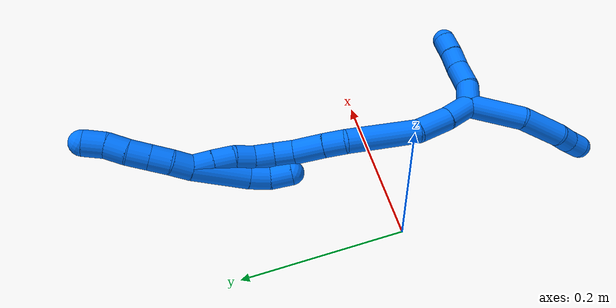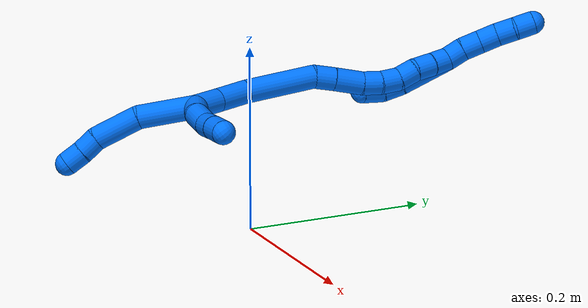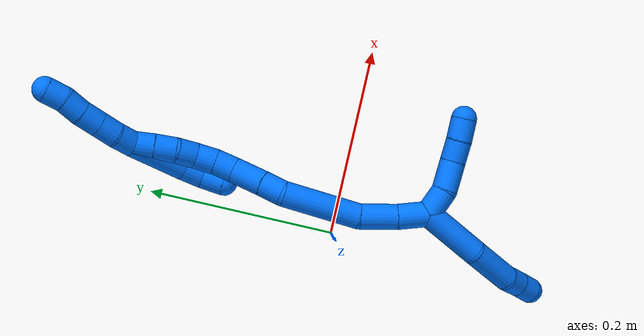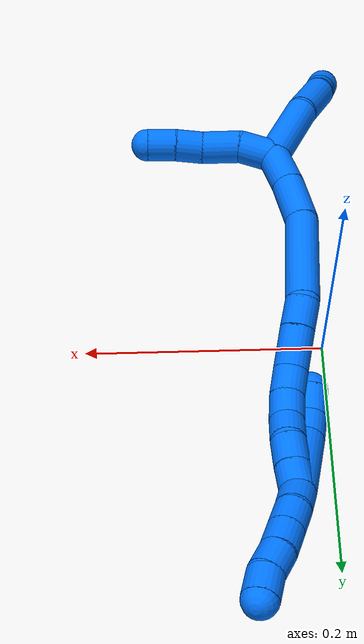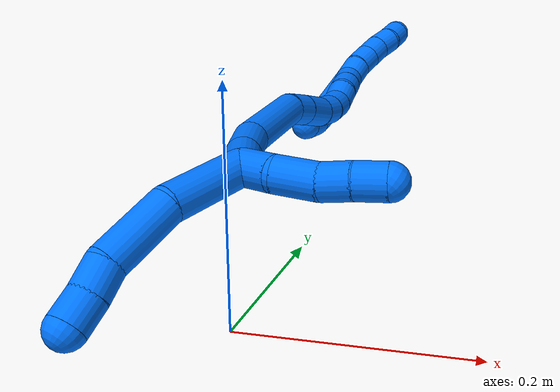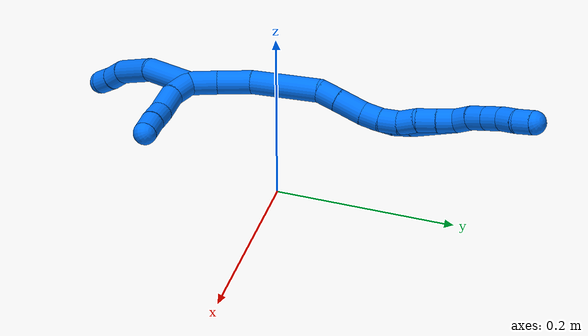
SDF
<sdf version="1.7">
 <world name="default">
  <model name="14">
   <static>0</static>
   <link name="14">
    <collision name="collision-cylinder-e_1_2_8">
     <pose>-0.004309 -0.012983 -0.027031 2.69381 -0.142704 -0.608289</pose>
     <geometry><cylinder><radius>0.0125</radius><length>0.06059</length></cylinder></geometry>
     <surface>
      <friction><ode><mu>1.16</mu><mu2>1.16</mu2><slip1>0</slip1><slip2>0</slip2></ode></friction>
      <contact><ode><kp>1e+06</kp><kd>1</kd><max_vel>0</max_vel><min_depth>0.001</min_depth></ode></contact>
     </surface>
    </collision>
    <visual name="visual-cylinder-e_1_2_8">
     <pose>-0.004309 -0.012983 -0.027031 2.69381 -0.142704 -0.608289</pose>
     <geometry><cylinder><radius>0.0125</radius><length>0.06059</length></cylinder></geometry>
     <material><ambient>0 0.462745 1 1</ambient></material>
    </visual>
    <collision name="collision-cylinder-e_2_8_9">
     <pose>-0.009983 -0.029883 -0.078261 2.98114 -0.055662 -0.666646</pose>
     <geometry><cylinder><radius>0.0125</radius><length>0.049104</length></cylinder></geometry>
     <surface>
      <friction><ode><mu>1.16</mu><mu2>1.16</mu2><slip1>0</slip1><slip2>0</slip2></ode></friction>
      <contact><ode><kp>1e+06</kp><kd>1</kd><max_vel>0</max_vel><min_depth>0.001</min_depth></ode></contact>
     </surface>
    </collision>
    <visual name="visual-cylinder-e_2_8_9">
     <pose>-0.009983 -0.029883 -0.078261 2.98114 -0.055662 -0.666646</pose>
     <geometry><cylinder><radius>0.0125</radius><length>0.049104</length></cylinder></geometry>
     <material><ambient>0 0.462745 1 1</ambient></material>
    </visual>
    <collision name="collision-cylinder-e_3_9_10">
     <pose>-0.009807 -0.033226 -0.112453 -3.08424 0.152868 -2.42486</pose>
     <geometry><cylinder><radius>0.0125</radius><length>0.020254</length></cylinder></geometry>
     <surface>
      <friction><ode><mu>1.16</mu><mu2>1.16</mu2><slip1>0</slip1><slip2>0</slip2></ode></friction>
      <contact><ode><kp>1e+06</kp><kd>1</kd><max_vel>0</max_vel><min_depth>0.001</min_depth></ode></contact>
     </surface>
    </collision>
    <visual name="visual-cylinder-e_3_9_10">
     <pose>-0.009807 -0.033226 -0.112453 -3.08424 0.152868 -2.42486</pose>
     <geometry><cylinder><radius>0.0125</radius><length>0.020254</length></cylinder></geometry>
     <material><ambient>0 0.462745 1 1</ambient></material>
    </visual>
    <collision name="collision-cylinder-e_4_10_6">
     <pose>-0.007233 -0.033077 -0.132408 3.099 0.103119 2.35875</pose>
     <geometry><cylinder><radius>0.0125</radius><length>0.020051</length></cylinder></geometry>
     <surface>
      <friction><ode><mu>1.16</mu><mu2>1.16</mu2><slip1>0</slip1><slip2>0</slip2></ode></friction>
      <contact><ode><kp>1e+06</kp><kd>1</kd><max_vel>0</max_vel><min_depth>0.001</min_depth></ode></contact>
     </surface>
    </collision>
    <visual name="visual-cylinder-e_4_10_6">
     <pose>-0.007233 -0.033077 -0.132408 3.099 0.103119 2.35875</pose>
     <geometry><cylinder><radius>0.0125</radius><length>0.020051</length></cylinder></geometry>
     <material><ambient>0 0.462745 1 1</ambient></material>
    </visual>
    <collision name="collision-cylinder-e_1_2_11">
     <pose>0.013252 -0.002647 0.000171 1.50613 1.37326 1.31026</pose>
     <geometry><cylinder><radius>0.0125</radius><length>0.027029</length></cylinder></geometry>
     <surface>
      <friction><ode><mu>1.16</mu><mu2>1.16</mu2><slip1>0</slip1><slip2>0</slip2></ode></friction>
      <contact><ode><kp>1e+06</kp><kd>1</kd><max_vel>0</max_vel><min_depth>0.001</min_depth></ode></contact>
     </surface>
    </collision>
    <visual name="visual-cylinder-e_1_2_11">
     <pose>0.013252 -0.002647 0.000171 1.50613 1.37326 1.31026</pose>
     <geometry><cylinder><radius>0.0125</radius><length>0.027029</length></cylinder></geometry>
     <material><ambient>0 0.462745 1 1</ambient></material>
    </visual>
    <collision name="collision-cylinder-e_2_11_12">
     <pose>0.041022 -0.004336 0.003568 -0.288373 1.34307 -0.229771</pose>
     <geometry><cylinder><radius>0.0125</radius><length>0.029807</length></cylinder></geometry>
     <surface>
      <friction><ode><mu>1.16</mu><mu2>1.16</mu2><slip1>0</slip1><slip2>0</slip2></ode></friction>
      <contact><ode><kp>1e+06</kp><kd>1</kd><max_vel>0</max_vel><min_depth>0.001</min_depth></ode></contact>
     </surface>
    </collision>
    <visual name="visual-cylinder-e_2_11_12">
     <pose>0.041022 -0.004336 0.003568 -0.288373 1.34307 -0.229771</pose>
     <geometry><cylinder><radius>0.0125</radius><length>0.029807</length></cylinder></geometry>
     <material><ambient>0 0.462745 1 1</ambient></material>
    </visual>
    <collision name="collision-cylinder-e_3_12_13">
     <pose>0.065523 -0.004302 0.010516 0.242817 1.20406 0.167278</pose>
     <geometry><cylinder><radius>0.0125</radius><length>0.021387</length></cylinder></geometry>
     <surface>
      <friction><ode><mu>1.16</mu><mu2>1.16</mu2><slip1>0</slip1><slip2>0</slip2></ode></friction>
      <contact><ode><kp>1e+06</kp><kd>1</kd><max_vel>0</max_vel><min_depth>0.001</min_depth></ode></contact>
     </surface>
    </collision>
    <visual name="visual-cylinder-e_3_12_13">
     <pose>0.065523 -0.004302 0.010516 0.242817 1.20406 0.167278</pose>
     <geometry><cylinder><radius>0.0125</radius><length>0.021387</length></cylinder></geometry>
     <material><ambient>0 0.462745 1 1</ambient></material>
    </visual>
    <collision name="collision-cylinder-e_4_13_5">
     <pose>0.0857 -0.005161 0.018064 -0.016442 1.21172 -0.011391</pose>
     <geometry><cylinder><radius>0.0125</radius><length>0.021777</length></cylinder></geometry>
     <surface>
      <friction><ode><mu>1.16</mu><mu2>1.16</mu2><slip1>0</slip1><slip2>0</slip2></ode></friction>
      <contact><ode><kp>1e+06</kp><kd>1</kd><max_vel>0</max_vel><min_depth>0.001</min_depth></ode></contact>
     </surface>
    </collision>
    <visual name="visual-cylinder-e_4_13_5">
     <pose>0.0857 -0.005161 0.018064 -0.016442 1.21172 -0.011391</pose>
     <geometry><cylinder><radius>0.0125</radius><length>0.021777</length></cylinder></geometry>
     <material><ambient>0 0.462745 1 1</ambient></material>
    </visual>
    <collision name="collision-cylinder-e_1_2_14">
     <pose>-0.008441 0.008624 0.009125 -0.757152 -0.591882 0.241373</pose>
     <geometry><cylinder><radius>0.0125</radius><length>0.030258</length></cylinder></geometry>
     <surface>
      <friction><ode><mu>1.16</mu><mu2>1.16</mu2><slip1>0</slip1><slip2>0</slip2></ode></friction>
      <contact><ode><kp>1e+06</kp><kd>1</kd><max_vel>0</max_vel><min_depth>0.001</min_depth></ode></contact>
     </surface>
    </collision>
    <visual name="visual-cylinder-e_1_2_14">
     <pose>-0.008441 0.008624 0.009125 -0.757152 -0.591882 0.241373</pose>
     <geometry><cylinder><radius>0.0125</radius><length>0.030258</length></cylinder></geometry>
     <material><ambient>0 0.462745 1 1</ambient></material>
    </visual>
    <collision name="collision-cylinder-e_2_14_15">
     <pose>-0.025675 0.027347 0.030972 -0.670998 -0.49617 0.176187</pose>
     <geometry><cylinder><radius>0.0125</radius><length>0.036941</length></cylinder></geometry>
     <surface>
      <friction><ode><mu>1.16</mu><mu2>1.16</mu2><slip1>0</slip1><slip2>0</slip2></ode></friction>
      <contact><ode><kp>1e+06</kp><kd>1</kd><max_vel>0</max_vel><min_depth>0.001</min_depth></ode></contact>
     </surface>
    </collision>
    <visual name="visual-cylinder-e_2_14_15">
     <pose>-0.025675 0.027347 0.030972 -0.670998 -0.49617 0.176187</pose>
     <geometry><cylinder><radius>0.0125</radius><length>0.036941</length></cylinder></geometry>
     <material><ambient>0 0.462745 1 1</ambient></material>
    </visual>
    <collision name="collision-cylinder-e_3_15_16">
     <pose>-0.043016 0.058363 0.074718 -0.59321 -0.224598 0.068904</pose>
     <geometry><cylinder><radius>0.0125</radius><length>0.076761</length></cylinder></geometry>
     <surface>
      <friction><ode><mu>1.16</mu><mu2>1.16</mu2><slip1>0</slip1><slip2>0</slip2></ode></friction>
      <contact><ode><kp>1e+06</kp><kd>1</kd><max_vel>0</max_vel><min_depth>0.001</min_depth></ode></contact>
     </surface>
    </collision>
    <visual name="visual-cylinder-e_3_15_16">
     <pose>-0.043016 0.058363 0.074718 -0.59321 -0.224598 0.068904</pose>
     <geometry><cylinder><radius>0.0125</radius><length>0.076761</length></cylinder></geometry>
     <material><ambient>0 0.462745 1 1</ambient></material>
    </visual>
    <collision name="collision-cylinder-e_4_16_17">
     <pose>-0.051731 0.087664 0.112998 -0.857358 -0.015072 0.006888</pose>
     <geometry><cylinder><radius>0.0125</radius><length>0.02218</length></cylinder></geometry>
     <surface>
      <friction><ode><mu>1.16</mu><mu2>1.16</mu2><slip1>0</slip1><slip2>0</slip2></ode></friction>
      <contact><ode><kp>1e+06</kp><kd>1</kd><max_vel>0</max_vel><min_depth>0.001</min_depth></ode></contact>
     </surface>
    </collision>
    <visual name="visual-cylinder-e_4_16_17">
     <pose>-0.051731 0.087664 0.112998 -0.857358 -0.015072 0.006888</pose>
     <geometry><cylinder><radius>0.0125</radius><length>0.02218</length></cylinder></geometry>
     <material><ambient>0 0.462745 1 1</ambient></material>
    </visual>
    <collision name="collision-cylinder-e_5_17_18">
     <pose>-0.052369 0.108166 0.130056 -0.890687 -0.030215 0.014423</pose>
     <geometry><cylinder><radius>0.0125</radius><length>0.031183</length></cylinder></geometry>
     <surface>
      <friction><ode><mu>1.16</mu><mu2>1.16</mu2><slip1>0</slip1><slip2>0</slip2></ode></friction>
      <contact><ode><kp>1e+06</kp><kd>1</kd><max_vel>0</max_vel><min_depth>0.001</min_depth></ode></contact>
     </surface>
    </collision>
    <visual name="visual-cylinder-e_5_17_18">
     <pose>-0.052369 0.108166 0.130056 -0.890687 -0.030215 0.014423</pose>
     <geometry><cylinder><radius>0.0125</radius><length>0.031183</length></cylinder></geometry>
     <material><ambient>0 0.462745 1 1</ambient></material>
    </visual>
    <collision name="collision-cylinder-e_6_18_19">
     <pose>-0.053599 0.127072 0.147374 -0.734558 -0.074824 0.028799</pose>
     <geometry><cylinder><radius>0.0125</radius><length>0.020316</length></cylinder></geometry>
     <surface>
      <friction><ode><mu>1.16</mu><mu2>1.16</mu2><slip1>0</slip1><slip2>0</slip2></ode></friction>
      <contact><ode><kp>1e+06</kp><kd>1</kd><max_vel>0</max_vel><min_depth>0.001</min_depth></ode></contact>
     </surface>
    </collision>
    <visual name="visual-cylinder-e_6_18_19">
     <pose>-0.053599 0.127072 0.147374 -0.734558 -0.074824 0.028799</pose>
     <geometry><cylinder><radius>0.0125</radius><length>0.020316</length></cylinder></geometry>
     <material><ambient>0 0.462745 1 1</ambient></material>
    </visual>
    <collision name="collision-cylinder-e_7_19_20">
     <pose>-0.056585 0.13964 0.163253 -0.604717 -0.215596 0.067485</pose>
     <geometry><cylinder><radius>0.0125</radius><length>0.020811</length></cylinder></geometry>
     <surface>
      <friction><ode><mu>1.16</mu><mu2>1.16</mu2><slip1>0</slip1><slip2>0</slip2></ode></friction>
      <contact><ode><kp>1e+06</kp><kd>1</kd><max_vel>0</max_vel><min_depth>0.001</min_depth></ode></contact>
     </surface>
    </collision>
    <visual name="visual-cylinder-e_7_19_20">
     <pose>-0.056585 0.13964 0.163253 -0.604717 -0.215596 0.067485</pose>
     <geometry><cylinder><radius>0.0125</radius><length>0.020811</length></cylinder></geometry>
     <material><ambient>0 0.462745 1 1</ambient></material>
    </visual>
    <collision name="collision-cylinder-e_8_20_21">
     <pose>-0.061665 0.148282 0.18086 -0.300324 -0.286813 0.043688</pose>
     <geometry><cylinder><radius>0.0125</radius><length>0.020182</length></cylinder></geometry>
     <surface>
      <friction><ode><mu>1.16</mu><mu2>1.16</mu2><slip1>0</slip1><slip2>0</slip2></ode></friction>
      <contact><ode><kp>1e+06</kp><kd>1</kd><max_vel>0</max_vel><min_depth>0.001</min_depth></ode></contact>
     </surface>
    </collision>
    <visual name="visual-cylinder-e_8_20_21">
     <pose>-0.061665 0.148282 0.18086 -0.300324 -0.286813 0.043688</pose>
     <geometry><cylinder><radius>0.0125</radius><length>0.020182</length></cylinder></geometry>
     <material><ambient>0 0.462745 1 1</ambient></material>
    </visual>
    <collision name="collision-cylinder-e_9_21_22">
     <pose>-0.068193 0.156513 0.198521 -0.567825 -0.352604 0.103874</pose>
     <geometry><cylinder><radius>0.0125</radius><length>0.021271</length></cylinder></geometry>
     <surface>
      <friction><ode><mu>1.16</mu><mu2>1.16</mu2><slip1>0</slip1><slip2>0</slip2></ode></friction>
      <contact><ode><kp>1e+06</kp><kd>1</kd><max_vel>0</max_vel><min_depth>0.001</min_depth></ode></contact>
     </surface>
    </collision>
    <visual name="visual-cylinder-e_9_21_22">
     <pose>-0.068193 0.156513 0.198521 -0.567825 -0.352604 0.103874</pose>
     <geometry><cylinder><radius>0.0125</radius><length>0.021271</length></cylinder></geometry>
     <material><ambient>0 0.462745 1 1</ambient></material>
    </visual>
    <collision name="collision-cylinder-e_10_22_1">
     <pose>-0.075803 0.166951 0.214667 -0.580467 -0.402601 0.121744</pose>
     <geometry><cylinder><radius>0.0125</radius><length>0.020098</length></cylinder></geometry>
     <surface>
      <friction><ode><mu>1.16</mu><mu2>1.16</mu2><slip1>0</slip1><slip2>0</slip2></ode></friction>
      <contact><ode><kp>1e+06</kp><kd>1</kd><max_vel>0</max_vel><min_depth>0.001</min_depth></ode></contact>
     </surface>
    </collision>
    <visual name="visual-cylinder-e_10_22_1">
     <pose>-0.075803 0.166951 0.214667 -0.580467 -0.402601 0.121744</pose>
     <geometry><cylinder><radius>0.0125</radius><length>0.020098</length></cylinder></geometry>
     <material><ambient>0 0.462745 1 1</ambient></material>
    </visual>
    <collision name="collision-cylinder-e_1_1_23">
     <pose>-0.080584 0.173264 0.232285 -0.124937 -0.084415 0.005283</pose>
     <geometry><cylinder><radius>0.0125</radius><length>0.02</length></cylinder></geometry>
     <surface>
      <friction><ode><mu>1.16</mu><mu2>1.16</mu2><slip1>0</slip1><slip2>0</slip2></ode></friction>
      <contact><ode><kp>1e+06</kp><kd>1</kd><max_vel>0</max_vel><min_depth>0.001</min_depth></ode></contact>
     </surface>
    </collision>
    <visual name="visual-cylinder-e_1_1_23">
     <pose>-0.080584 0.173264 0.232285 -0.124937 -0.084415 0.005283</pose>
     <geometry><cylinder><radius>0.0125</radius><length>0.02</length></cylinder></geometry>
     <material><ambient>0 0.462745 1 1</ambient></material>
    </visual>
    <collision name="collision-cylinder-e_2_23_24">
     <pose>-0.081406 0.1772 0.251801 -0.272898 0.002104 -0.000289</pose>
     <geometry><cylinder><radius>0.0125</radius><length>0.02</length></cylinder></geometry>
     <surface>
      <friction><ode><mu>1.16</mu><mu2>1.16</mu2><slip1>0</slip1><slip2>0</slip2></ode></friction>
      <contact><ode><kp>1e+06</kp><kd>1</kd><max_vel>0</max_vel><min_depth>0.001</min_depth></ode></contact>
     </surface>
    </collision>
    <visual name="visual-cylinder-e_2_23_24">
     <pose>-0.081406 0.1772 0.251801 -0.272898 0.002104 -0.000289</pose>
     <geometry><cylinder><radius>0.0125</radius><length>0.02</length></cylinder></geometry>
     <material><ambient>0 0.462745 1 1</ambient></material>
    </visual>
    <collision name="collision-cylinder-e_3_24_25">
     <pose>-0.081362 0.182588 0.271062 -0.272544 0.002257 -0.00031</pose>
     <geometry><cylinder><radius>0.0125</radius><length>0.02</length></cylinder></geometry>
     <surface>
      <friction><ode><mu>1.16</mu><mu2>1.16</mu2><slip1>0</slip1><slip2>0</slip2></ode></friction>
      <contact><ode><kp>1e+06</kp><kd>1</kd><max_vel>0</max_vel><min_depth>0.001</min_depth></ode></contact>
     </surface>
    </collision>
    <visual name="visual-cylinder-e_3_24_25">
     <pose>-0.081362 0.182588 0.271062 -0.272544 0.002257 -0.00031</pose>
     <geometry><cylinder><radius>0.0125</radius><length>0.02</length></cylinder></geometry>
     <material><ambient>0 0.462745 1 1</ambient></material>
    </visual>
    <collision name="collision-cylinder-e_4_25_26">
     <pose>-0.079992 0.188091 0.290195 -0.28767 0.135146 -0.019603</pose>
     <geometry><cylinder><radius>0.0125</radius><length>0.02</length></cylinder></geometry>
     <surface>
      <friction><ode><mu>1.16</mu><mu2>1.16</mu2><slip1>0</slip1><slip2>0</slip2></ode></friction>
      <contact><ode><kp>1e+06</kp><kd>1</kd><max_vel>0</max_vel><min_depth>0.001</min_depth></ode></contact>
     </surface>
    </collision>
    <visual name="visual-cylinder-e_4_25_26">
     <pose>-0.079992 0.188091 0.290195 -0.28767 0.135146 -0.019603</pose>
     <geometry><cylinder><radius>0.0125</radius><length>0.02</length></cylinder></geometry>
     <material><ambient>0 0.462745 1 1</ambient></material>
    </visual>
    <collision name="collision-cylinder-e_5_26_4">
     <pose>-0.079395 0.194716 0.30891 -0.392477 -0.075119 0.01494</pose>
     <geometry><cylinder><radius>0.0125</radius><length>0.02</length></cylinder></geometry>
     <surface>
      <friction><ode><mu>1.16</mu><mu2>1.16</mu2><slip1>0</slip1><slip2>0</slip2></ode></friction>
      <contact><ode><kp>1e+06</kp><kd>1</kd><max_vel>0</max_vel><min_depth>0.001</min_depth></ode></contact>
     </surface>
    </collision>
    <visual name="visual-cylinder-e_5_26_4">
     <pose>-0.079395 0.194716 0.30891 -0.392477 -0.075119 0.01494</pose>
     <geometry><cylinder><radius>0.0125</radius><length>0.02</length></cylinder></geometry>
     <material><ambient>0 0.462745 1 1</ambient></material>
    </visual>
    <collision name="collision-cylinder-e_1_1_27">
     <pose>-0.076176 0.165279 0.195338 2.89738 0.127144 0.95704</pose>
     <geometry><cylinder><radius>0.0125</radius><length>0.056229</length></cylinder></geometry>
     <surface>
      <friction><ode><mu>1.16</mu><mu2>1.16</mu2><slip1>0</slip1><slip2>0</slip2></ode></friction>
      <contact><ode><kp>1e+06</kp><kd>1</kd><max_vel>0</max_vel><min_depth>0.001</min_depth></ode></contact>
     </surface>
    </collision>
    <visual name="visual-cylinder-e_1_1_27">
     <pose>-0.076176 0.165279 0.195338 2.89738 0.127144 0.95704</pose>
     <geometry><cylinder><radius>0.0125</radius><length>0.056229</length></cylinder></geometry>
     <material><ambient>0 0.462745 1 1</ambient></material>
    </visual>
    <collision name="collision-cylinder-e_2_27_28">
     <pose>-0.071127 0.1544 0.158587 2.73826 0.139896 0.660302</pose>
     <geometry><cylinder><radius>0.0125</radius><length>0.02128</length></cylinder></geometry>
     <surface>
      <friction><ode><mu>1.16</mu><mu2>1.16</mu2><slip1>0</slip1><slip2>0</slip2></ode></friction>
      <contact><ode><kp>1e+06</kp><kd>1</kd><max_vel>0</max_vel><min_depth>0.001</min_depth></ode></contact>
     </surface>
    </collision>
    <visual name="visual-cylinder-e_2_27_28">
     <pose>-0.071127 0.1544 0.158587 2.73826 0.139896 0.660302</pose>
     <geometry><cylinder><radius>0.0125</radius><length>0.02128</length></cylinder></geometry>
     <material><ambient>0 0.462745 1 1</ambient></material>
    </visual>
    <collision name="collision-cylinder-e_3_28_3">
     <pose>-0.067807 0.14277 0.140717 2.39986 0.163995 0.416549</pose>
     <geometry><cylinder><radius>0.0125</radius><length>0.022491</length></cylinder></geometry>
     <surface>
      <friction><ode><mu>1.16</mu><mu2>1.16</mu2><slip1>0</slip1><slip2>0</slip2></ode></friction>
      <contact><ode><kp>1e+06</kp><kd>1</kd><max_vel>0</max_vel><min_depth>0.001</min_depth></ode></contact>
     </surface>
    </collision>
    <visual name="visual-cylinder-e_3_28_3">
     <pose>-0.067807 0.14277 0.140717 2.39986 0.163995 0.416549</pose>
     <geometry><cylinder><radius>0.0125</radius><length>0.022491</length></cylinder></geometry>
     <material><ambient>0 0.462745 1 1</ambient></material>
    </visual>
    <collision name="collision-sphere-3">
     <pose>-0.065971 0.135275 0.132537 0 -0 0</pose>
     <geometry><sphere><radius>0.0125</radius></sphere></geometry>
     <surface>
      <friction><ode><mu>1.16</mu><mu2>1.16</mu2><slip1>0</slip1><slip2>0</slip2></ode></friction>
      <contact><ode><kp>1e+06</kp><kd>1</kd><max_vel>0</max_vel><min_depth>0.001</min_depth></ode></contact>
     </surface>
    </collision>
    <visual name="visual-sphere-3">
     <pose>-0.065971 0.135275 0.132537 0 -0 0</pose>
     <geometry><sphere><radius>0.0125</radius></sphere></geometry>
     <material><ambient>0 0.462745 1 1</ambient></material>
    </visual>
    <collision name="collision-sphere-28">
     <pose>-0.069643 0.150265 0.148896 0 -0 0</pose>
     <geometry><sphere><radius>0.0125</radius></sphere></geometry>
     <surface>
      <friction><ode><mu>1.16</mu><mu2>1.16</mu2><slip1>0</slip1><slip2>0</slip2></ode></friction>
      <contact><ode><kp>1e+06</kp><kd>1</kd><max_vel>0</max_vel><min_depth>0.001</min_depth></ode></contact>
     </surface>
    </collision>
    <visual name="visual-sphere-28">
     <pose>-0.069643 0.150265 0.148896 0 -0 0</pose>
     <geometry><sphere><radius>0.0125</radius></sphere></geometry>
     <material><ambient>0 0.462745 1 1</ambient></material>
    </visual>
    <collision name="collision-sphere-27">
     <pose>-0.072611 0.158536 0.168278 0 -0 0</pose>
     <geometry><sphere><radius>0.0125</radius></sphere></geometry>
     <surface>
      <friction><ode><mu>1.16</mu><mu2>1.16</mu2><slip1>0</slip1><slip2>0</slip2></ode></friction>
      <contact><ode><kp>1e+06</kp><kd>1</kd><max_vel>0</max_vel><min_depth>0.001</min_depth></ode></contact>
     </surface>
    </collision>
    <visual name="visual-sphere-27">
     <pose>-0.072611 0.158536 0.168278 0 -0 0</pose>
     <geometry><sphere><radius>0.0125</radius></sphere></geometry>
     <material><ambient>0 0.462745 1 1</ambient></material>
    </visual>
    <collision name="collision-sphere-4">
     <pose>-0.080146 0.19853 0.318124 0 -0 0</pose>
     <geometry><sphere><radius>0.0125</radius></sphere></geometry>
     <surface>
      <friction><ode><mu>1.16</mu><mu2>1.16</mu2><slip1>0</slip1><slip2>0</slip2></ode></friction>
      <contact><ode><kp>1e+06</kp><kd>1</kd><max_vel>0</max_vel><min_depth>0.001</min_depth></ode></contact>
     </surface>
    </collision>
    <visual name="visual-sphere-4">
     <pose>-0.080146 0.19853 0.318124 0 -0 0</pose>
     <geometry><sphere><radius>0.0125</radius></sphere></geometry>
     <material><ambient>0 0.462745 1 1</ambient></material>
    </visual>
    <collision name="collision-sphere-26">
     <pose>-0.078645 0.190902 0.299696 0 -0 0</pose>
     <geometry><sphere><radius>0.0125</radius></sphere></geometry>
     <surface>
      <friction><ode><mu>1.16</mu><mu2>1.16</mu2><slip1>0</slip1><slip2>0</slip2></ode></friction>
      <contact><ode><kp>1e+06</kp><kd>1</kd><max_vel>0</max_vel><min_depth>0.001</min_depth></ode></contact>
     </surface>
    </collision>
    <visual name="visual-sphere-26">
     <pose>-0.078645 0.190902 0.299696 0 -0 0</pose>
     <geometry><sphere><radius>0.0125</radius></sphere></geometry>
     <material><ambient>0 0.462745 1 1</ambient></material>
    </visual>
    <collision name="collision-sphere-25">
     <pose>-0.08134 0.185279 0.280693 0 -0 0</pose>
     <geometry><sphere><radius>0.0125</radius></sphere></geometry>
     <surface>
      <friction><ode><mu>1.16</mu><mu2>1.16</mu2><slip1>0</slip1><slip2>0</slip2></ode></friction>
      <contact><ode><kp>1e+06</kp><kd>1</kd><max_vel>0</max_vel><min_depth>0.001</min_depth></ode></contact>
     </surface>
    </collision>
    <visual name="visual-sphere-25">
     <pose>-0.08134 0.185279 0.280693 0 -0 0</pose>
     <geometry><sphere><radius>0.0125</radius></sphere></geometry>
     <material><ambient>0 0.462745 1 1</ambient></material>
    </visual>
    <collision name="collision-sphere-24">
     <pose>-0.081385 0.179896 0.261431 0 -0 0</pose>
     <geometry><sphere><radius>0.0125</radius></sphere></geometry>
     <surface>
      <friction><ode><mu>1.16</mu><mu2>1.16</mu2><slip1>0</slip1><slip2>0</slip2></ode></friction>
      <contact><ode><kp>1e+06</kp><kd>1</kd><max_vel>0</max_vel><min_depth>0.001</min_depth></ode></contact>
     </surface>
    </collision>
    <visual name="visual-sphere-24">
     <pose>-0.081385 0.179896 0.261431 0 -0 0</pose>
     <geometry><sphere><radius>0.0125</radius></sphere></geometry>
     <material><ambient>0 0.462745 1 1</ambient></material>
    </visual>
    <collision name="collision-sphere-23">
     <pose>-0.081427 0.174505 0.242172 0 -0 0</pose>
     <geometry><sphere><radius>0.0125</radius></sphere></geometry>
     <surface>
      <friction><ode><mu>1.16</mu><mu2>1.16</mu2><slip1>0</slip1><slip2>0</slip2></ode></friction>
      <contact><ode><kp>1e+06</kp><kd>1</kd><max_vel>0</max_vel><min_depth>0.001</min_depth></ode></contact>
     </surface>
    </collision>
    <visual name="visual-sphere-23">
     <pose>-0.081427 0.174505 0.242172 0 -0 0</pose>
     <geometry><sphere><radius>0.0125</radius></sphere></geometry>
     <material><ambient>0 0.462745 1 1</ambient></material>
    </visual>
    <collision name="collision-sphere-1">
     <pose>-0.079741 0.172022 0.222398 0 -0 0</pose>
     <geometry><sphere><radius>0.0125</radius></sphere></geometry>
     <surface>
      <friction><ode><mu>1.16</mu><mu2>1.16</mu2><slip1>0</slip1><slip2>0</slip2></ode></friction>
      <contact><ode><kp>1e+06</kp><kd>1</kd><max_vel>0</max_vel><min_depth>0.001</min_depth></ode></contact>
     </surface>
    </collision>
    <visual name="visual-sphere-1">
     <pose>-0.079741 0.172022 0.222398 0 -0 0</pose>
     <geometry><sphere><radius>0.0125</radius></sphere></geometry>
     <material><ambient>0 0.462745 1 1</ambient></material>
    </visual>
    <collision name="collision-sphere-22">
     <pose>-0.071866 0.161881 0.206936 0 -0 0</pose>
     <geometry><sphere><radius>0.0125</radius></sphere></geometry>
     <surface>
      <friction><ode><mu>1.16</mu><mu2>1.16</mu2><slip1>0</slip1><slip2>0</slip2></ode></friction>
      <contact><ode><kp>1e+06</kp><kd>1</kd><max_vel>0</max_vel><min_depth>0.001</min_depth></ode></contact>
     </surface>
    </collision>
    <visual name="visual-sphere-22">
     <pose>-0.071866 0.161881 0.206936 0 -0 0</pose>
     <geometry><sphere><radius>0.0125</radius></sphere></geometry>
     <material><ambient>0 0.462745 1 1</ambient></material>
    </visual>
    <collision name="collision-sphere-21">
     <pose>-0.06452 0.151145 0.190106 0 -0 0</pose>
     <geometry><sphere><radius>0.0125</radius></sphere></geometry>
     <surface>
      <friction><ode><mu>1.16</mu><mu2>1.16</mu2><slip1>0</slip1><slip2>0</slip2></ode></friction>
      <contact><ode><kp>1e+06</kp><kd>1</kd><max_vel>0</max_vel><min_depth>0.001</min_depth></ode></contact>
     </surface>
    </collision>
    <visual name="visual-sphere-21">
     <pose>-0.06452 0.151145 0.190106 0 -0 0</pose>
     <geometry><sphere><radius>0.0125</radius></sphere></geometry>
     <material><ambient>0 0.462745 1 1</ambient></material>
    </visual>
    <collision name="collision-sphere-11">
     <pose>0.026503 -0.005293 0.000343 0 -0 0</pose>
     <geometry><sphere><radius>0.0125</radius></sphere></geometry>
     <surface>
      <friction><ode><mu>1.16</mu><mu2>1.16</mu2><slip1>0</slip1><slip2>0</slip2></ode></friction>
      <contact><ode><kp>1e+06</kp><kd>1</kd><max_vel>0</max_vel><min_depth>0.001</min_depth></ode></contact>
     </surface>
    </collision>
    <visual name="visual-sphere-11">
     <pose>0.026503 -0.005293 0.000343 0 -0 0</pose>
     <geometry><sphere><radius>0.0125</radius></sphere></geometry>
     <material><ambient>0 0.462745 1 1</ambient></material>
    </visual>
    <collision name="collision-sphere-6">
     <pose>-0.006201 -0.033502 -0.142372 0 -0 0</pose>
     <geometry><sphere><radius>0.0125</radius></sphere></geometry>
     <surface>
      <friction><ode><mu>1.16</mu><mu2>1.16</mu2><slip1>0</slip1><slip2>0</slip2></ode></friction>
      <contact><ode><kp>1e+06</kp><kd>1</kd><max_vel>0</max_vel><min_depth>0.001</min_depth></ode></contact>
     </surface>
    </collision>
    <visual name="visual-sphere-6">
     <pose>-0.006201 -0.033502 -0.142372 0 -0 0</pose>
     <geometry><sphere><radius>0.0125</radius></sphere></geometry>
     <material><ambient>0 0.462745 1 1</ambient></material>
    </visual>
    <collision name="collision-sphere-10">
     <pose>-0.008265 -0.032652 -0.122445 0 -0 0</pose>
     <geometry><sphere><radius>0.0125</radius></sphere></geometry>
     <surface>
      <friction><ode><mu>1.16</mu><mu2>1.16</mu2><slip1>0</slip1><slip2>0</slip2></ode></friction>
      <contact><ode><kp>1e+06</kp><kd>1</kd><max_vel>0</max_vel><min_depth>0.001</min_depth></ode></contact>
     </surface>
    </collision>
    <visual name="visual-sphere-10">
     <pose>-0.008265 -0.032652 -0.122445 0 -0 0</pose>
     <geometry><sphere><radius>0.0125</radius></sphere></geometry>
     <material><ambient>0 0.462745 1 1</ambient></material>
    </visual>
    <collision name="collision-sphere-9">
     <pose>-0.011349 -0.0338 -0.10246 0 -0 0</pose>
     <geometry><sphere><radius>0.0125</radius></sphere></geometry>
     <surface>
      <friction><ode><mu>1.16</mu><mu2>1.16</mu2><slip1>0</slip1><slip2>0</slip2></ode></friction>
      <contact><ode><kp>1e+06</kp><kd>1</kd><max_vel>0</max_vel><min_depth>0.001</min_depth></ode></contact>
     </surface>
    </collision>
    <visual name="visual-sphere-9">
     <pose>-0.011349 -0.0338 -0.10246 0 -0 0</pose>
     <geometry><sphere><radius>0.0125</radius></sphere></geometry>
     <material><ambient>0 0.462745 1 1</ambient></material>
    </visual>
    <collision name="collision-sphere-2">
     <geometry><sphere><radius>0.0125</radius></sphere></geometry>
     <surface>
      <friction><ode><mu>1.16</mu><mu2>1.16</mu2><slip1>0</slip1><slip2>0</slip2></ode></friction>
      <contact><ode><kp>1e+06</kp><kd>1</kd><max_vel>0</max_vel><min_depth>0.001</min_depth></ode></contact>
     </surface>
    </collision>
    <visual name="visual-sphere-2">
     <geometry><sphere><radius>0.0125</radius></sphere></geometry>
     <material><ambient>0 0.462745 1 1</ambient></material>
    </visual>
    <collision name="collision-sphere-19">
     <pose>-0.054359 0.133861 0.154891 0 -0 0</pose>
     <geometry><sphere><radius>0.0125</radius></sphere></geometry>
     <surface>
      <friction><ode><mu>1.16</mu><mu2>1.16</mu2><slip1>0</slip1><slip2>0</slip2></ode></friction>
      <contact><ode><kp>1e+06</kp><kd>1</kd><max_vel>0</max_vel><min_depth>0.001</min_depth></ode></contact>
     </surface>
    </collision>
    <visual name="visual-sphere-19">
     <pose>-0.054359 0.133861 0.154891 0 -0 0</pose>
     <geometry><sphere><radius>0.0125</radius></sphere></geometry>
     <material><ambient>0 0.462745 1 1</ambient></material>
    </visual>
    <collision name="collision-sphere-8">
     <pose>-0.008617 -0.025967 -0.054061 0 -0 0</pose>
     <geometry><sphere><radius>0.0125</radius></sphere></geometry>
     <surface>
      <friction><ode><mu>1.16</mu><mu2>1.16</mu2><slip1>0</slip1><slip2>0</slip2></ode></friction>
      <contact><ode><kp>1e+06</kp><kd>1</kd><max_vel>0</max_vel><min_depth>0.001</min_depth></ode></contact>
     </surface>
    </collision>
    <visual name="visual-sphere-8">
     <pose>-0.008617 -0.025967 -0.054061 0 -0 0</pose>
     <geometry><sphere><radius>0.0125</radius></sphere></geometry>
     <material><ambient>0 0.462745 1 1</ambient></material>
    </visual>
    <collision name="collision-sphere-12">
     <pose>0.055541 -0.00338 0.006794 0 -0 0</pose>
     <geometry><sphere><radius>0.0125</radius></sphere></geometry>
     <surface>
      <friction><ode><mu>1.16</mu><mu2>1.16</mu2><slip1>0</slip1><slip2>0</slip2></ode></friction>
      <contact><ode><kp>1e+06</kp><kd>1</kd><max_vel>0</max_vel><min_depth>0.001</min_depth></ode></contact>
     </surface>
    </collision>
    <visual name="visual-sphere-12">
     <pose>0.055541 -0.00338 0.006794 0 -0 0</pose>
     <geometry><sphere><radius>0.0125</radius></sphere></geometry>
     <material><ambient>0 0.462745 1 1</ambient></material>
    </visual>
    <collision name="collision-sphere-13">
     <pose>0.075506 -0.005223 0.014238 0 -0 0</pose>
     <geometry><sphere><radius>0.0125</radius></sphere></geometry>
     <surface>
      <friction><ode><mu>1.16</mu><mu2>1.16</mu2><slip1>0</slip1><slip2>0</slip2></ode></friction>
      <contact><ode><kp>1e+06</kp><kd>1</kd><max_vel>0</max_vel><min_depth>0.001</min_depth></ode></contact>
     </surface>
    </collision>
    <visual name="visual-sphere-13">
     <pose>0.075506 -0.005223 0.014238 0 -0 0</pose>
     <geometry><sphere><radius>0.0125</radius></sphere></geometry>
     <material><ambient>0 0.462745 1 1</ambient></material>
    </visual>
    <collision name="collision-sphere-5">
     <pose>0.095894 -0.005098 0.02189 0 -0 0</pose>
     <geometry><sphere><radius>0.0125</radius></sphere></geometry>
     <surface>
      <friction><ode><mu>1.16</mu><mu2>1.16</mu2><slip1>0</slip1><slip2>0</slip2></ode></friction>
      <contact><ode><kp>1e+06</kp><kd>1</kd><max_vel>0</max_vel><min_depth>0.001</min_depth></ode></contact>
     </surface>
    </collision>
    <visual name="visual-sphere-5">
     <pose>0.095894 -0.005098 0.02189 0 -0 0</pose>
     <geometry><sphere><radius>0.0125</radius></sphere></geometry>
     <material><ambient>0 0.462745 1 1</ambient></material>
    </visual>
    <collision name="collision-sphere-14">
     <pose>-0.016882 0.017248 0.018251 0 -0 0</pose>
     <geometry><sphere><radius>0.0125</radius></sphere></geometry>
     <surface>
      <friction><ode><mu>1.16</mu><mu2>1.16</mu2><slip1>0</slip1><slip2>0</slip2></ode></friction>
      <contact><ode><kp>1e+06</kp><kd>1</kd><max_vel>0</max_vel><min_depth>0.001</min_depth></ode></contact>
     </surface>
    </collision>
    <visual name="visual-sphere-14">
     <pose>-0.016882 0.017248 0.018251 0 -0 0</pose>
     <geometry><sphere><radius>0.0125</radius></sphere></geometry>
     <material><ambient>0 0.462745 1 1</ambient></material>
    </visual>
    <collision name="collision-sphere-15">
     <pose>-0.034468 0.037447 0.043694 0 -0 0</pose>
     <geometry><sphere><radius>0.0125</radius></sphere></geometry>
     <surface>
      <friction><ode><mu>1.16</mu><mu2>1.16</mu2><slip1>0</slip1><slip2>0</slip2></ode></friction>
      <contact><ode><kp>1e+06</kp><kd>1</kd><max_vel>0</max_vel><min_depth>0.001</min_depth></ode></contact>
     </surface>
    </collision>
    <visual name="visual-sphere-15">
     <pose>-0.034468 0.037447 0.043694 0 -0 0</pose>
     <geometry><sphere><radius>0.0125</radius></sphere></geometry>
     <material><ambient>0 0.462745 1 1</ambient></material>
    </visual>
    <collision name="collision-sphere-16">
     <pose>-0.051564 0.07928 0.105742 0 -0 0</pose>
     <geometry><sphere><radius>0.0125</radius></sphere></geometry>
     <surface>
      <friction><ode><mu>1.16</mu><mu2>1.16</mu2><slip1>0</slip1><slip2>0</slip2></ode></friction>
      <contact><ode><kp>1e+06</kp><kd>1</kd><max_vel>0</max_vel><min_depth>0.001</min_depth></ode></contact>
     </surface>
    </collision>
    <visual name="visual-sphere-16">
     <pose>-0.051564 0.07928 0.105742 0 -0 0</pose>
     <geometry><sphere><radius>0.0125</radius></sphere></geometry>
     <material><ambient>0 0.462745 1 1</ambient></material>
    </visual>
    <collision name="collision-sphere-17">
     <pose>-0.051898 0.096049 0.120255 0 -0 0</pose>
     <geometry><sphere><radius>0.0125</radius></sphere></geometry>
     <surface>
      <friction><ode><mu>1.16</mu><mu2>1.16</mu2><slip1>0</slip1><slip2>0</slip2></ode></friction>
      <contact><ode><kp>1e+06</kp><kd>1</kd><max_vel>0</max_vel><min_depth>0.001</min_depth></ode></contact>
     </surface>
    </collision>
    <visual name="visual-sphere-17">
     <pose>-0.051898 0.096049 0.120255 0 -0 0</pose>
     <geometry><sphere><radius>0.0125</radius></sphere></geometry>
     <material><ambient>0 0.462745 1 1</ambient></material>
    </visual>
    <collision name="collision-sphere-18">
     <pose>-0.05284 0.120282 0.139856 0 -0 0</pose>
     <geometry><sphere><radius>0.0125</radius></sphere></geometry>
     <surface>
      <friction><ode><mu>1.16</mu><mu2>1.16</mu2><slip1>0</slip1><slip2>0</slip2></ode></friction>
      <contact><ode><kp>1e+06</kp><kd>1</kd><max_vel>0</max_vel><min_depth>0.001</min_depth></ode></contact>
     </surface>
    </collision>
    <visual name="visual-sphere-18">
     <pose>-0.05284 0.120282 0.139856 0 -0 0</pose>
     <geometry><sphere><radius>0.0125</radius></sphere></geometry>
     <material><ambient>0 0.462745 1 1</ambient></material>
    </visual>
    <collision name="collision-sphere-20">
     <pose>-0.058811 0.145419 0.171615 0 -0 0</pose>
     <geometry><sphere><radius>0.0125</radius></sphere></geometry>
     <surface>
      <friction><ode><mu>1.16</mu><mu2>1.16</mu2><slip1>0</slip1><slip2>0</slip2></ode></friction>
      <contact><ode><kp>1e+06</kp><kd>1</kd><max_vel>0</max_vel><min_depth>0.001</min_depth></ode></contact>
     </surface>
    </collision>
    <visual name="visual-sphere-20">
     <pose>-0.058811 0.145419 0.171615 0 -0 0</pose>
     <geometry><sphere><radius>0.0125</radius></sphere></geometry>
     <material><ambient>0 0.462745 1 1</ambient></material>
    </visual>
    <inertial>
     <pose>-0.033859 0.075127 0.089627 0 -0 0</pose>
     <mass>0.75</mass>
     <inertia><ixx>0.00011</ixx><ixy>0</ixy><ixz>0</ixz><iyy>4.6e-05</iyy><iyz>0</iyz><izz>-4e-06</izz></inertia>
    </inertial>
   </link>
   <pose>0.044802 -0.082165 0.15797 -0.904368 0.177095 -0.276913</pose>
  </model>
 </world>
</sdf>
